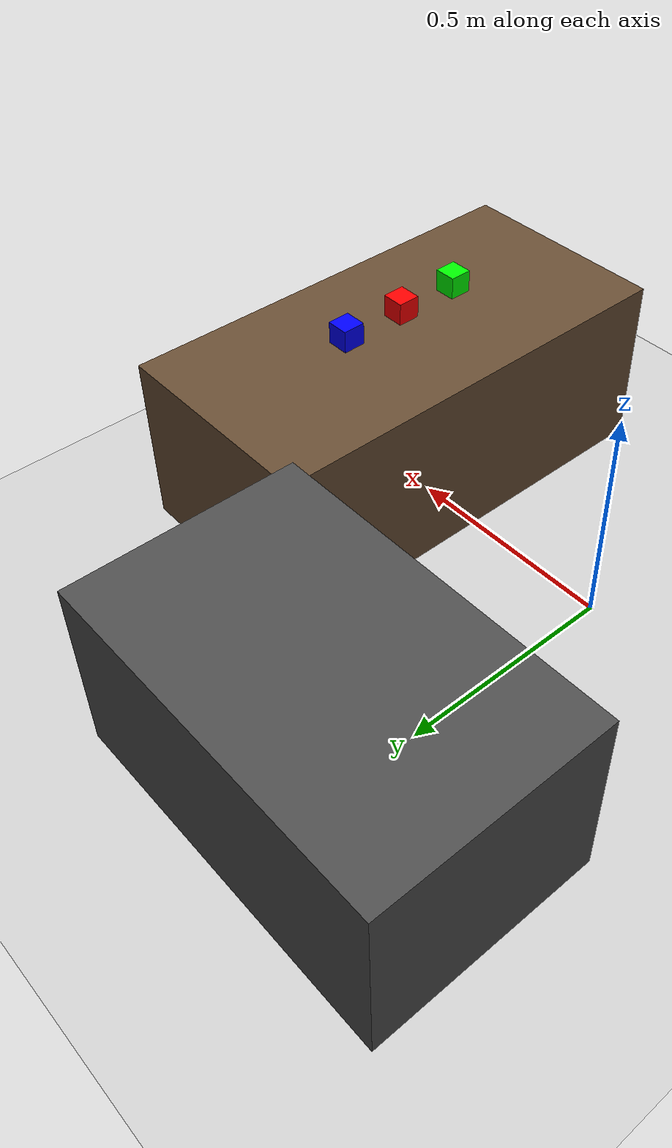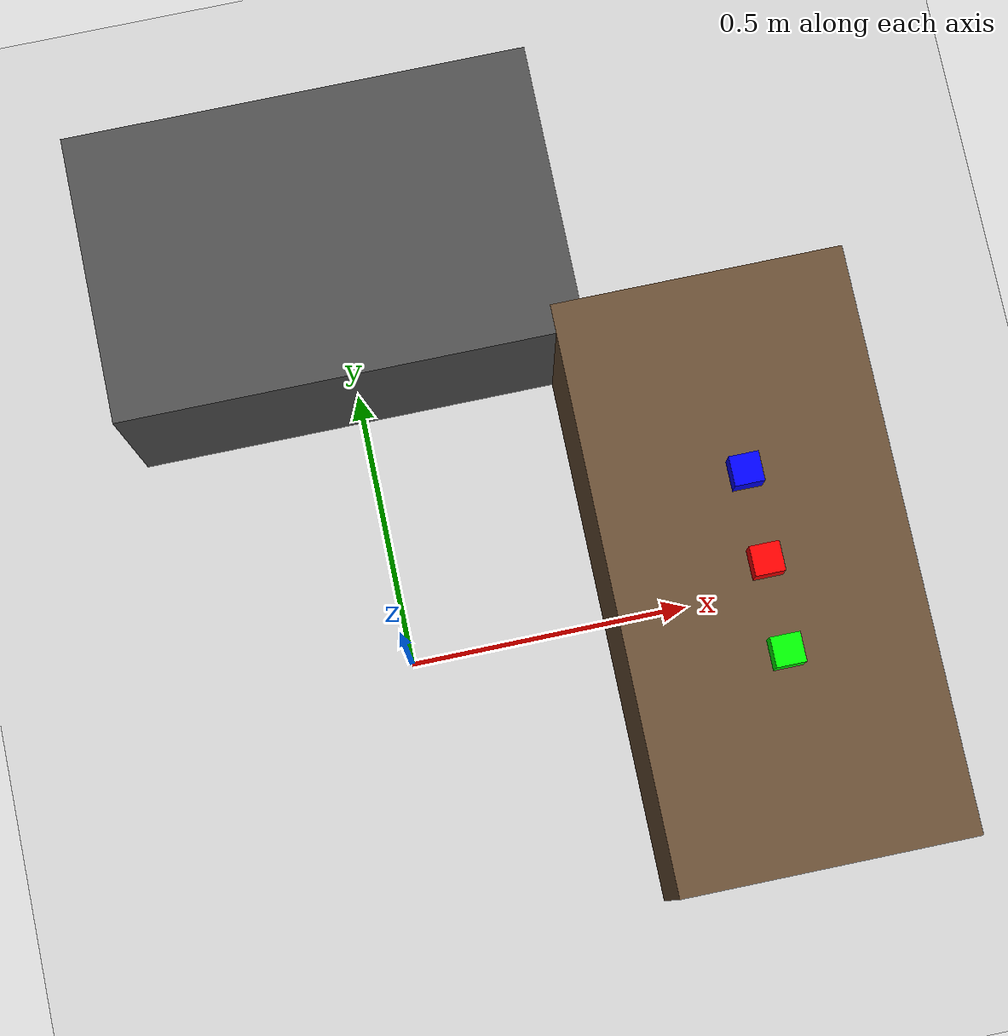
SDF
<?xml version="1.0" ?>
<sdf version="1.8">
    <world name="workspace">
        <!-- Core Plugins -->
        <plugin filename="gz-sim-physics-system" name="gz::sim::systems::Physics"/>
        <plugin filename="gz-sim-scene-broadcaster-system" name="gz::sim::systems::SceneBroadcaster"/>
        <plugin filename="gz-sim-user-commands-system" name="gz::sim::systems::UserCommands"/>
        <plugin filename="gz-sim-sensors-system" name="gz::sim::systems::Sensors">
            <render_engine>ogre2</render_engine>
        </plugin>

        <!-- Fixes the black void -->
        <scene>
            <ambient>1.0 1.0 1.0</ambient>
            <background>0.8 0.8 0.8</background>
        </scene>

        <light type="directional" name="sun">
            <cast_shadows>true</cast_shadows>
            <pose>0 0 10 0 0 0</pose>
            <diffuse>0.8 0.8 0.8 1</diffuse>
            <direction>-0.5 0.1 -0.9</direction>
        </light>

        <model name="ground_plane">
            <static>true</static>
            <link name="link">
                <collision name="collision"><geometry><plane><normal>0 0 1</normal><size>100 100</size></plane></geometry></collision>
                <visual name="visual">
                    <geometry><plane><normal>0 0 1</normal><size>100 100</size></plane></geometry>
                    <material>
                        <ambient>0.8 0.8 0.8 1</ambient>
                        <diffuse>0.8 0.8 0.8 1</diffuse>
                    </material>
                </visual>
            </link>
        </model>

        <!-- Workspace Table (Now with Diffuse color!) -->
        <model name="table">
            <static>true</static>
            <pose>0.6 0 0.2 0 0 0</pose>
            <link name="link">
                <visual name="visual">
                    <geometry><box><size>0.5 1.0 0.4</size></box></geometry>
                    <material>
                        <ambient>0.4 0.3 0.2 1</ambient>
                        <diffuse>0.4 0.3 0.2 1</diffuse>
                    </material>
                </visual>
                <collision name="collision"><geometry><box><size>0.5 1.0 0.4</size></box></geometry></collision>
            </link>
        </model>

        <!-- WORKSPACE CAMERA (Native to SDF) -->
        <model name="camera_model">
            <static>true</static>
             <!-- Inside your camera model -->
            <pose>0.8 0.0 1.5 0 1.5708 0</pose>
            <link name="camera_link">
                <sensor name="workspace_camera" type="camera">
                    <update_rate>30.0</update_rate>
                    <always_on>true</always_on>
                    <visualize>true</visualize>
                    <topic>/workspace_camera/image_raw</topic>
                    <camera>
                        <horizontal_fov>1.3962634</horizontal_fov>
                        <image>
                            <width>640</width>
                            <height>480</height>
                            <format>R8G8B8</format>
                        </image>
                        <clip>
                            <near>0.02</near>
                            <far>10.0</far>
                        </clip>
                    </camera>
                </sensor>
            </link>
        </model>

        <!-- Target Object: Red Cube -->
        <model name="red_cube">
            <pose>0.6 0.0 0.45 0 0 0</pose>
            <link name="link">
                <inertial>
                    <mass>0.05</mass>
                    <inertia ixx="0.0001" ixy="0" ixz="0" iyy="0.0001" iyz="0" izz="0.0001"/>
                </inertial>
                <visual name="visual">
                    <geometry><box><size>0.05 0.05 0.05</size></box></geometry>
                    <material>
                        <ambient>1 0 0 1</ambient>
                        <diffuse>1 0 0 1</diffuse>
                    </material>
                </visual>
                <collision name="collision">
                    <geometry><box><size>0.05 0.05 0.05</size></box></geometry>
                </collision>
            </link>
        </model>

        <!-- Secondary Drop-off Table (Positioned to the left of the robot) -->
        <model name="drop_table">
            <static>true</static>
            <pose>0.0 0.7 0.2 0 0 0</pose>
            <link name="link">
                <visual name="visual">
                    <geometry><box><size>0.8 0.5 0.4</size></box></geometry>
                    <material>
                        <ambient>0.3 0.3 0.3 1</ambient>
                        <diffuse>0.3 0.3 0.3 1</diffuse>
                    </material>
                </visual>
                <collision name="collision"><geometry><box><size>0.8 0.5 0.4</size></box></geometry></collision>
            </link>
        </model>

        <!-- Target Object: Blue Cube -->
        <model name="blue_cube">
            <pose>0.6 0.15 0.45 0 0 0</pose>
            <link name="link">
                <inertial>
                    <mass>0.05</mass>
                    <inertia ixx="0.0001" ixy="0" ixz="0" iyy="0.0001" iyz="0" izz="0.0001"/>
                </inertial>
                <visual name="visual">
                    <geometry><box><size>0.05 0.05 0.05</size></box></geometry>
                    <material>
                        <ambient>0 0 1 1</ambient>
                        <diffuse>0 0 1 1</diffuse>
                    </material>
                </visual>
                <collision name="collision"><geometry><box><size>0.05 0.05 0.05</size></box></geometry></collision>
            </link>
        </model>

        <!-- Target Object: Green Cube -->
        <model name="green_cube">
            <pose>0.6 -0.15 0.45 0 0 0</pose>
            <link name="link">
                <inertial>
                    <mass>0.05</mass>
                    <inertia ixx="0.0001" ixy="0" ixz="0" iyy="0.0001" iyz="0" izz="0.0001"/>
                </inertial>
                <visual name="visual">
                    <geometry><box><size>0.05 0.05 0.05</size></box></geometry>
                    <material>
                        <ambient>0 1 0 1</ambient>
                        <diffuse>0 1 0 1</diffuse>
                    </material>
                </visual>
                <collision name="collision"><geometry><box><size>0.05 0.05 0.05</size></box></geometry></collision>
            </link>
        </model>

    </world>
</sdf>
